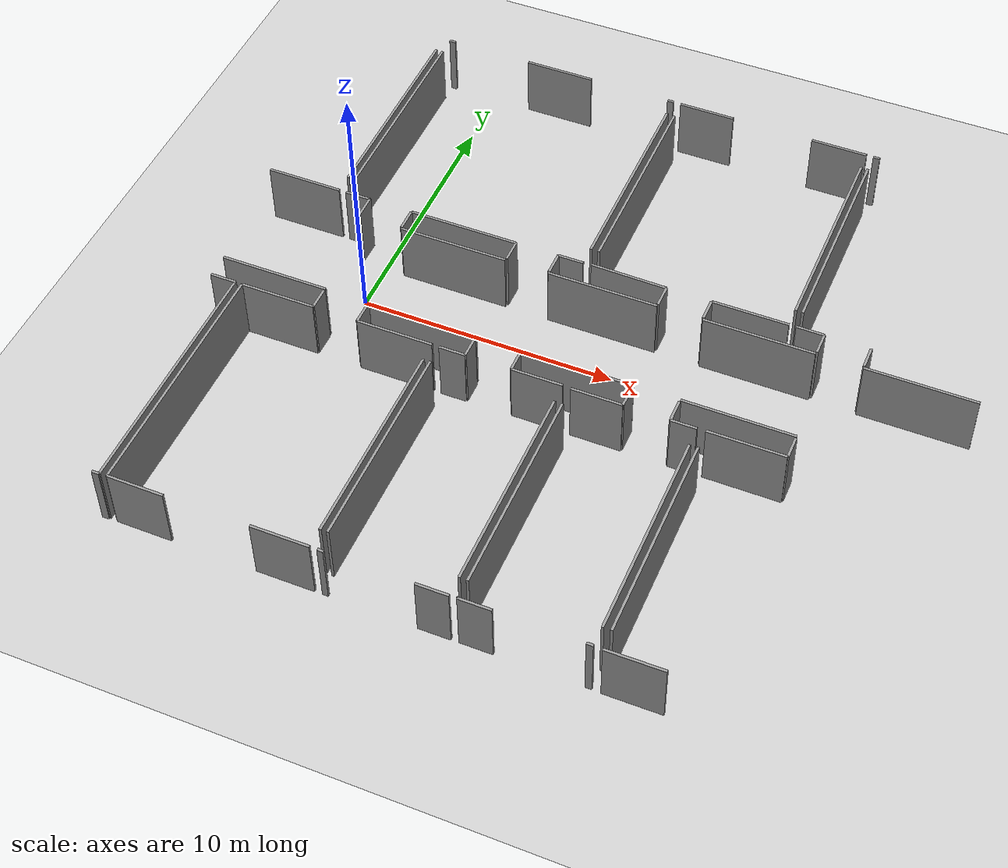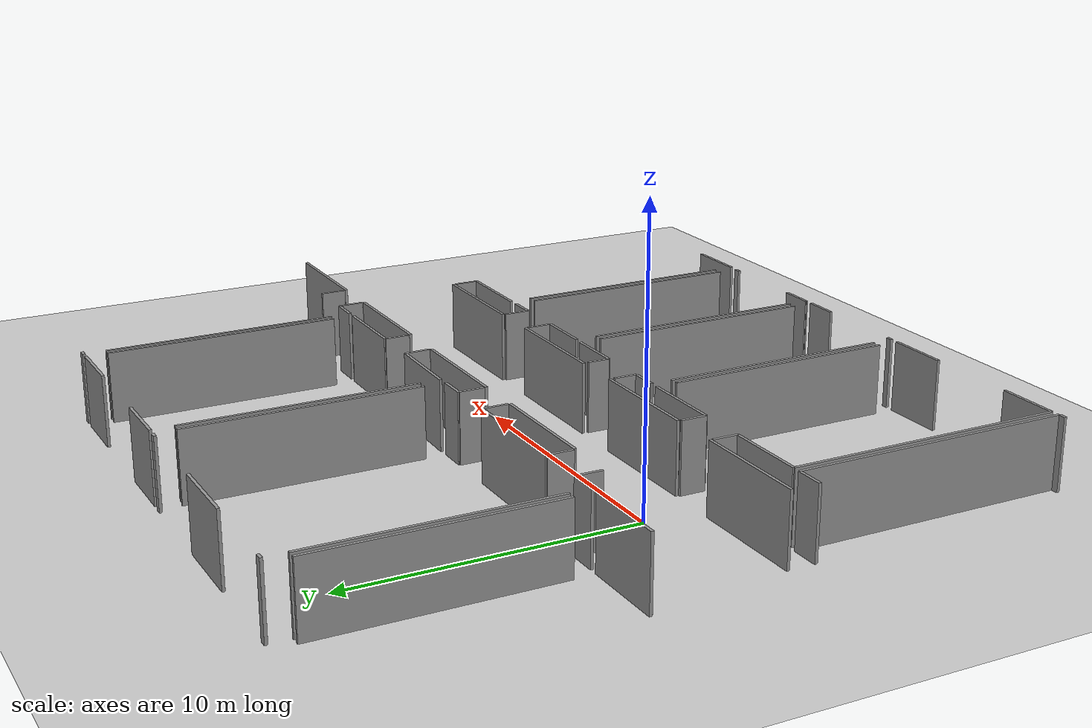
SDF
<sdf version="1.6">
 <world name="default">
  <model name="ground_plane">
   <static>1</static>
   <link name="link">
    <collision name="collision">
     <geometry><plane><normal>0 0 1</normal><size>100 100</size></plane></geometry>
     <surface><friction><ode><mu>100</mu><mu2>50</mu2></ode></friction></surface>
    </collision>
    <visual name="visual">
     <cast_shadows>0</cast_shadows>
     <geometry><plane><normal>0 0 1</normal><size>100 100</size></plane></geometry>
     <material>
      <script><uri>file://media/materials/scripts/gazebo.material</uri><name>Gazebo/Grey</name></script>
     </material>
    </visual>
   </link>
  </model>
  <model name="50052751">
   <static>1</static>
   <link name="Wall_105">
    <collision name="Wall_105_Collision">
     <geometry><box><size>8.13187817027 0.1 2.5</size></box></geometry>
     <pose>4.06593908514 0 1.25 0 0 0</pose>
    </collision>
    <visual name="Wall_105_Visual">
     <pose>4.06593908514 0 1.25 0 0 0</pose>
     <geometry><box><size>8.13187817027 0.1 2.5</size></box></geometry>
     <material>
      <script><uri>file://media/materials/scripts/gazebo.material</uri><name>Gazebo/Grey</name></script>
      <ambient>1 1 1 1</ambient>
     </material>
    </visual>
    <pose>36.7313640758 -0.756551151891 0 0 0 -1.57079632679</pose>
   </link>
   <link name="Wall_106">
    <collision name="Wall_106_Collision">
     <geometry><box><size>2.95972250064 0.1 2.5</size></box></geometry>
     <pose>1.47986125032 0 1.25 0 0 0</pose>
    </collision>
    <visual name="Wall_106_Visual">
     <pose>1.47986125032 0 1.25 0 0 0</pose>
     <geometry><box><size>2.95972250064 0.1 2.5</size></box></geometry>
     <material>
      <script><uri>file://media/materials/scripts/gazebo.material</uri><name>Gazebo/Grey</name></script>
      <ambient>1 1 1 1</ambient>
     </material>
    </visual>
    <pose>36.7313640758 -9.62835994732 0 0 0 3.14159265359</pose>
   </link>
   <link name="Wall_110">
    <collision name="Wall_110_Collision">
     <geometry><box><size>8.15611115199 0.1 2.5</size></box></geometry>
     <pose>4.078055576 0 1.25 0 0 0</pose>
    </collision>
    <visual name="Wall_110_Visual">
     <pose>4.078055576 0 1.25 0 0 0</pose>
     <geometry><box><size>8.15611115199 0.1 2.5</size></box></geometry>
     <material>
      <script><uri>file://media/materials/scripts/gazebo.material</uri><name>Gazebo/Grey</name></script>
      <ambient>1 1 1 1</ambient>
     </material>
    </visual>
    <pose>37.007188695 -8.90834857939 0 0 0 1.57079632679</pose>
   </link>
   <link name="Wall_111">
    <collision name="Wall_111_Collision">
     <geometry><box><size>0.256539733209 0.1 2.5</size></box></geometry>
     <pose>0.128269866604 0 1.25 0 0 0</pose>
    </collision>
    <visual name="Wall_111_Visual">
     <pose>0.128269866604 0 1.25 0 0 0</pose>
     <geometry><box><size>0.256539733209 0.1 2.5</size></box></geometry>
     <material>
      <script><uri>file://media/materials/scripts/gazebo.material</uri><name>Gazebo/Grey</name></script>
      <ambient>1 1 1 1</ambient>
     </material>
    </visual>
    <pose>37.007188695 -0.0142099159839 0 0 0 0.0</pose>
   </link>
   <link name="Wall_112">
    <collision name="Wall_112_Collision">
     <geometry><box><size>2.73705819214 0.1 2.5</size></box></geometry>
     <pose>1.36852909607 0 1.25 0 0 0</pose>
    </collision>
    <visual name="Wall_112_Visual">
     <pose>1.36852909607 0 1.25 0 0 0</pose>
     <geometry><box><size>2.73705819214 0.1 2.5</size></box></geometry>
     <material>
      <script><uri>file://media/materials/scripts/gazebo.material</uri><name>Gazebo/Grey</name></script>
      <ambient>1 1 1 1</ambient>
     </material>
    </visual>
    <pose>40.4930587098 -0.0142099159839 0 0 0 0.0</pose>
   </link>
   <link name="Wall_113">
    <collision name="Wall_113_Collision">
     <geometry><box><size>0.252226008714 0.1 2.5</size></box></geometry>
     <pose>0.126113004357 0 1.25 0 0 0</pose>
    </collision>
    <visual name="Wall_113_Visual">
     <pose>0.126113004357 0 1.25 0 0 0</pose>
     <geometry><box><size>0.252226008714 0.1 2.5</size></box></geometry>
     <material>
      <script><uri>file://media/materials/scripts/gazebo.material</uri><name>Gazebo/Grey</name></script>
      <ambient>1 1 1 1</ambient>
     </material>
    </visual>
    <pose>46.4883745125 -0.0142099159839 0 0 0 0.0</pose>
   </link>
   <link name="Wall_114">
    <collision name="Wall_114_Collision">
     <geometry><box><size>8.12337759553 0.1 2.5</size></box></geometry>
     <pose>4.06168879776 0 1.25 0 0 0</pose>
    </collision>
    <visual name="Wall_114_Visual">
     <pose>4.06168879776 0 1.25 0 0 0</pose>
     <geometry><box><size>8.12337759553 0.1 2.5</size></box></geometry>
     <material>
      <script><uri>file://media/materials/scripts/gazebo.material</uri><name>Gazebo/Grey</name></script>
      <ambient>1 1 1 1</ambient>
     </material>
    </visual>
    <pose>46.7406005212 -0.741833738908 0 0 0 -1.57079632679</pose>
   </link>
   <link name="Wall_115">
    <collision name="Wall_115_Collision">
     <geometry><box><size>0.992791005123 0.1 2.5</size></box></geometry>
     <pose>0.496395502562 0 1.25 0 0 0</pose>
    </collision>
    <visual name="Wall_115_Visual">
     <pose>0.496395502562 0 1.25 0 0 0</pose>
     <geometry><box><size>0.992791005123 0.1 2.5</size></box></geometry>
     <material>
      <script><uri>file://media/materials/scripts/gazebo.material</uri><name>Gazebo/Grey</name></script>
      <ambient>1 1 1 1</ambient>
     </material>
    </visual>
    <pose>46.7406005212 -9.62214310908 0 0 0 3.14159265359</pose>
   </link>
   <link name="Wall_116">
    <collision name="Wall_116_Collision">
     <geometry><box><size>0.895859078233 0.1 2.5</size></box></geometry>
     <pose>0.447929539117 0 1.25 0 0 0</pose>
    </collision>
    <visual name="Wall_116_Visual">
     <pose>0.447929539117 0 1.25 0 0 0</pose>
     <geometry><box><size>0.895859078233 0.1 2.5</size></box></geometry>
     <material>
      <script><uri>file://media/materials/scripts/gazebo.material</uri><name>Gazebo/Grey</name></script>
      <ambient>1 1 1 1</ambient>
     </material>
    </visual>
    <pose>45.7478095161 -9.62214310908 0 0 0 -1.57079632679</pose>
   </link>
   <link name="Wall_117">
    <collision name="Wall_117_Collision">
     <geometry><box><size>0.883425401747 0.1 2.5</size></box></geometry>
     <pose>0.441712700874 0 1.25 0 0 0</pose>
    </collision>
    <visual name="Wall_117_Visual">
     <pose>0.441712700874 0 1.25 0 0 0</pose>
     <geometry><box><size>0.883425401747 0.1 2.5</size></box></geometry>
     <material>
      <script><uri>file://media/materials/scripts/gazebo.material</uri><name>Gazebo/Grey</name></script>
      <ambient>1 1 1 1</ambient>
     </material>
    </visual>
    <pose>44.0499783045 -10.5180021873 0 0 0 1.57079632679</pose>
   </link>
   <link name="Wall_118">
    <collision name="Wall_118_Collision">
     <geometry><box><size>4.28670027988 0.1 2.5</size></box></geometry>
     <pose>2.14335013994 0 1.25 0 0 0</pose>
    </collision>
    <visual name="Wall_118_Visual">
     <pose>2.14335013994 0 1.25 0 0 0</pose>
     <geometry><box><size>4.28670027988 0.1 2.5</size></box></geometry>
     <material>
      <script><uri>file://media/materials/scripts/gazebo.material</uri><name>Gazebo/Grey</name></script>
      <ambient>1 1 1 1</ambient>
     </material>
    </visual>
    <pose>44.0499783045 -9.63457678556 0 0 0 3.14159265359</pose>
   </link>
   <link name="Wall_119">
    <collision name="Wall_119_Collision">
     <geometry><box><size>0.891672227988 0.1 2.5</size></box></geometry>
     <pose>0.445836113994 0 1.25 0 0 0</pose>
    </collision>
    <visual name="Wall_119_Visual">
     <pose>0.445836113994 0 1.25 0 0 0</pose>
     <geometry><box><size>0.891672227988 0.1 2.5</size></box></geometry>
     <material>
      <script><uri>file://media/materials/scripts/gazebo.material</uri><name>Gazebo/Grey</name></script>
      <ambient>1 1 1 1</ambient>
     </material>
    </visual>
    <pose>39.7632780246 -9.63457678556 0 0 0 -1.57079632679</pose>
   </link>
   <link name="Wall_120">
    <collision name="Wall_120_Collision">
     <geometry><box><size>0.897762191981 0.1 2.5</size></box></geometry>
     <pose>0.448881095991 0 1.25 0 0 0</pose>
    </collision>
    <visual name="Wall_120_Visual">
     <pose>0.448881095991 0 1.25 0 0 0</pose>
     <geometry><box><size>0.897762191981 0.1 2.5</size></box></geometry>
     <material>
      <script><uri>file://media/materials/scripts/gazebo.material</uri><name>Gazebo/Grey</name></script>
      <ambient>1 1 1 1</ambient>
     </material>
    </visual>
    <pose>38.0134283706 -10.5262490136 0 0 0 1.57079632679</pose>
   </link>
   <link name="Wall_121">
    <collision name="Wall_121_Collision">
     <geometry><box><size>1.00624172325 0.1 2.5</size></box></geometry>
     <pose>0.503120861627 0 1.25 0 0 0</pose>
    </collision>
    <visual name="Wall_121_Visual">
     <pose>0.503120861627 0 1.25 0 0 0</pose>
     <geometry><box><size>1.00624172325 0.1 2.5</size></box></geometry>
     <material>
      <script><uri>file://media/materials/scripts/gazebo.material</uri><name>Gazebo/Grey</name></script>
      <ambient>1 1 1 1</ambient>
     </material>
    </visual>
    <pose>38.0134283706 -9.62848682157 0 0 0 3.13957525625</pose>
   </link>
   <link name="Wall_122">
    <collision name="Wall_122_Collision">
     <geometry><box><size>8.09406964381 0.1 2.5</size></box></geometry>
     <pose>4.04703482191 0 1.25 0 0 0</pose>
    </collision>
    <visual name="Wall_122_Visual">
     <pose>4.04703482191 0 1.25 0 0 0</pose>
     <geometry><box><size>8.09406964381 0.1 2.5</size></box></geometry>
     <material>
      <script><uri>file://media/materials/scripts/gazebo.material</uri><name>Gazebo/Grey</name></script>
      <ambient>1 1 1 1</ambient>
     </material>
    </visual>
    <pose>47.0515693076 -8.88068999292 0 0 0 1.57079632679</pose>
   </link>
   <link name="Wall_123">
    <collision name="Wall_123_Collision">
     <geometry><box><size>2.1994919955 0.1 2.5</size></box></geometry>
     <pose>1.09974599775 0 1.25 0 0 0</pose>
    </collision>
    <visual name="Wall_123_Visual">
     <pose>1.09974599775 0 1.25 0 0 0</pose>
     <geometry><box><size>2.1994919955 0.1 2.5</size></box></geometry>
     <material>
      <script><uri>file://media/materials/scripts/gazebo.material</uri><name>Gazebo/Grey</name></script>
      <ambient>1 1 1 1</ambient>
     </material>
    </visual>
    <pose>47.0515693076 -0.0282929577179 0 0 0 0.0</pose>
   </link>
   <link name="Wall_124">
    <collision name="Wall_124_Collision">
     <geometry><box><size>2.21890375573 0.1 2.5</size></box></geometry>
     <pose>1.10945187787 0 1.25 0 0 0</pose>
    </collision>
    <visual name="Wall_124_Visual">
     <pose>1.10945187787 0 1.25 0 0 0</pose>
     <geometry><box><size>2.21890375573 0.1 2.5</size></box></geometry>
     <material>
      <script><uri>file://media/materials/scripts/gazebo.material</uri><name>Gazebo/Grey</name></script>
      <ambient>1 1 1 1</ambient>
     </material>
    </visual>
    <pose>52.4861009259 -0.0282929577179 0 0 0 0.0</pose>
   </link>
   <link name="Wall_125">
    <collision name="Wall_125_Collision">
     <geometry><box><size>8.12147448178 0.1 2.5</size></box></geometry>
     <pose>4.06073724089 0 1.25 0 0 0</pose>
    </collision>
    <visual name="Wall_125_Visual">
     <pose>4.06073724089 0 1.25 0 0 0</pose>
     <geometry><box><size>8.12147448178 0.1 2.5</size></box></geometry>
     <material>
      <script><uri>file://media/materials/scripts/gazebo.material</uri><name>Gazebo/Grey</name></script>
      <ambient>1 1 1 1</ambient>
     </material>
    </visual>
    <pose>54.7050046817 -0.763021738634 0 0 0 -1.57079632679</pose>
   </link>
   <link name="Wall_126">
    <collision name="Wall_126_Collision">
     <geometry><box><size>2.95008005765 0.1 2.5</size></box></geometry>
     <pose>1.47504002883 0 1.25 0 0 0</pose>
    </collision>
    <visual name="Wall_126_Visual">
     <pose>1.47504002883 0 1.25 0 0 0</pose>
     <geometry><box><size>2.95008005765 0.1 2.5</size></box></geometry>
     <material>
      <script><uri>file://media/materials/scripts/gazebo.material</uri><name>Gazebo/Grey</name></script>
      <ambient>1 1 1 1</ambient>
     </material>
    </visual>
    <pose>54.7050046817 -9.63521115681 0 0 0 3.14159265359</pose>
   </link>
   <link name="Wall_127">
    <collision name="Wall_127_Collision">
     <geometry><box><size>0.884313521496 0.1 2.5</size></box></geometry>
     <pose>0.442156760748 0 1.25 0 0 0</pose>
    </collision>
    <visual name="Wall_127_Visual">
     <pose>0.442156760748 0 1.25 0 0 0</pose>
     <geometry><box><size>0.884313521496 0.1 2.5</size></box></geometry>
     <material>
      <script><uri>file://media/materials/scripts/gazebo.material</uri><name>Gazebo/Grey</name></script>
      <ambient>1 1 1 1</ambient>
     </material>
    </visual>
    <pose>51.754924624 -9.63521115681 0 0 0 -1.57079632679</pose>
   </link>
   <link name="Wall_128">
    <collision name="Wall_128_Collision">
     <geometry><box><size>0.880380419751 0.1 2.5</size></box></geometry>
     <pose>0.440190209875 0 1.25 0 0 0</pose>
    </collision>
    <visual name="Wall_128_Visual">
     <pose>0.440190209875 0 1.25 0 0 0</pose>
     <geometry><box><size>0.880380419751 0.1 2.5</size></box></geometry>
     <material>
      <script><uri>file://media/materials/scripts/gazebo.material</uri><name>Gazebo/Grey</name></script>
      <ambient>1 1 1 1</ambient>
     </material>
    </visual>
    <pose>50.0133217962 -10.5195246783 0 0 0 1.57079632679</pose>
   </link>
   <link name="Wall_129">
    <collision name="Wall_129_Collision">
     <geometry><box><size>2.9621916136 0.1 2.5</size></box></geometry>
     <pose>1.4810958068 0 1.25 0 0 0</pose>
    </collision>
    <visual name="Wall_129_Visual">
     <pose>1.4810958068 0 1.25 0 0 0</pose>
     <geometry><box><size>2.9621916136 0.1 2.5</size></box></geometry>
     <material>
      <script><uri>file://media/materials/scripts/gazebo.material</uri><name>Gazebo/Grey</name></script>
      <ambient>1 1 1 1</ambient>
     </material>
    </visual>
    <pose>50.0133217962 -9.63914425856 0 0 0 3.12437365646</pose>
   </link>
   <link name="Wall_130">
    <collision name="Wall_130_Collision">
     <geometry><box><size>8.12997505652 0.1 2.5</size></box></geometry>
     <pose>4.06498752826 0 1.25 0 0 0</pose>
    </collision>
    <visual name="Wall_130_Visual">
     <pose>4.06498752826 0 1.25 0 0 0</pose>
     <geometry><box><size>8.12997505652 0.1 2.5</size></box></geometry>
     <material>
      <script><uri>file://media/materials/scripts/gazebo.material</uri><name>Gazebo/Grey</name></script>
      <ambient>1 1 1 1</ambient>
     </material>
    </visual>
    <pose>54.9749930854 -8.90111674715 0 0 0 1.57079632679</pose>
   </link>
   <link name="Wall_131">
    <collision name="Wall_131_Collision">
     <geometry><box><size>0.259965337955 0.1 2.5</size></box></geometry>
     <pose>0.129982668977 0 1.25 0 0 0</pose>
    </collision>
    <visual name="Wall_131_Visual">
     <pose>0.129982668977 0 1.25 0 0 0</pose>
     <geometry><box><size>0.259965337955 0.1 2.5</size></box></geometry>
     <material>
      <script><uri>file://media/materials/scripts/gazebo.material</uri><name>Gazebo/Grey</name></script>
      <ambient>1 1 1 1</ambient>
     </material>
    </visual>
    <pose>54.9749930854 -0.0267704667196 0 0 0 0.0</pose>
   </link>
   <link name="Wall_135">
    <collision name="Wall_135_Collision">
     <geometry><box><size>0.88976911424 0.1 2.5</size></box></geometry>
     <pose>0.44488455712 0 1.25 0 0 0</pose>
    </collision>
    <visual name="Wall_135_Visual">
     <pose>0.44488455712 0 1.25 0 0 0</pose>
     <geometry><box><size>0.88976911424 0.1 2.5</size></box></geometry>
     <material>
      <script><uri>file://media/materials/scripts/gazebo.material</uri><name>Gazebo/Grey</name></script>
      <ambient>1 1 1 1</ambient>
     </material>
    </visual>
    <pose>57.7657190852 -9.62214310908 0 0 0 -1.57079632679</pose>
   </link>
   <link name="Wall_136">
    <collision name="Wall_136_Collision">
     <geometry><box><size>0.876701066505 0.1 2.5</size></box></geometry>
     <pose>0.438350533252 0 1.25 0 0 0</pose>
    </collision>
    <visual name="Wall_136_Visual">
     <pose>0.438350533252 0 1.25 0 0 0</pose>
     <geometry><box><size>0.876701066505 0.1 2.5</size></box></geometry>
     <material>
      <script><uri>file://media/materials/scripts/gazebo.material</uri><name>Gazebo/Grey</name></script>
      <ambient>1 1 1 1</ambient>
     </material>
    </visual>
    <pose>56.0261462454 -10.5119122233 0 0 0 1.57079632679</pose>
   </link>
   <link name="Wall_137">
    <collision name="Wall_137_Collision">
     <geometry><box><size>1.05118651283 0.1 2.5</size></box></geometry>
     <pose>0.525593256415 0 1.25 0 0 0</pose>
    </collision>
    <visual name="Wall_137_Visual">
     <pose>0.525593256415 0 1.25 0 0 0</pose>
     <geometry><box><size>1.05118651283 0.1 2.5</size></box></geometry>
     <material>
      <script><uri>file://media/materials/scripts/gazebo.material</uri><name>Gazebo/Grey</name></script>
      <ambient>1 1 1 1</ambient>
     </material>
    </visual>
    <pose>56.0261462454 -9.63521115681 0 0 0 3.13362661811</pose>
   </link>
   <link name="Wall_170">
    <collision name="Wall_170_Collision">
     <geometry><box><size>4.2249125202 0.1 2.5</size></box></geometry>
     <pose>2.1124562601 0 1.25 0 0 0</pose>
    </collision>
    <visual name="Wall_170_Visual">
     <pose>2.1124562601 0 1.25 0 0 0</pose>
     <geometry><box><size>4.2249125202 0.1 2.5</size></box></geometry>
     <material>
      <script><uri>file://media/materials/scripts/gazebo.material</uri><name>Gazebo/Grey</name></script>
      <ambient>1 1 1 1</ambient>
     </material>
    </visual>
    <pose>39.8018477966 -10.5931117432 0 0 0 0.0</pose>
   </link>
   <link name="Wall_171">
    <collision name="Wall_171_Collision">
     <geometry><box><size>4.25916856767 0.1 2.5</size></box></geometry>
     <pose>2.12958428383 0 1.25 0 0 0</pose>
    </collision>
    <visual name="Wall_171_Visual">
     <pose>2.12958428383 0 1.25 0 0 0</pose>
     <geometry><box><size>4.25916856767 0.1 2.5</size></box></geometry>
     <material>
      <script><uri>file://media/materials/scripts/gazebo.material</uri><name>Gazebo/Grey</name></script>
      <ambient>1 1 1 1</ambient>
     </material>
    </visual>
    <pose>45.7522501148 -10.5931117432 0 0 0 0.0</pose>
   </link>
   <link name="Wall_172">
    <collision name="Wall_172_Collision">
     <geometry><box><size>4.23645807694 0.1 2.5</size></box></geometry>
     <pose>2.11822903847 0 1.25 0 0 0</pose>
    </collision>
    <visual name="Wall_172_Visual">
     <pose>2.11822903847 0 1.25 0 0 0</pose>
     <geometry><box><size>4.23645807694 0.1 2.5</size></box></geometry>
     <material>
      <script><uri>file://media/materials/scripts/gazebo.material</uri><name>Gazebo/Grey</name></script>
      <ambient>1 1 1 1</ambient>
     </material>
    </visual>
    <pose>51.7690076657 -10.5931117432 0 0 0 0.0</pose>
   </link>
   <link name="Wall_173">
    <collision name="Wall_173_Collision">
     <geometry><box><size>4.20207515523 0.1 2.5</size></box></geometry>
     <pose>2.10103757762 0 1.25 0 0 0</pose>
    </collision>
    <visual name="Wall_173_Visual">
     <pose>2.10103757762 0 1.25 0 0 0</pose>
     <geometry><box><size>4.20207515523 0.1 2.5</size></box></geometry>
     <material>
      <script><uri>file://media/materials/scripts/gazebo.material</uri><name>Gazebo/Grey</name></script>
      <ambient>1 1 1 1</ambient>
     </material>
    </visual>
    <pose>57.7742196599 -10.5931117432 0 0 0 0.0</pose>
   </link>
   <link name="Wall_181">
    <collision name="Wall_181_Collision">
     <geometry><box><size>4.2294799932 0.1 2.5</size></box></geometry>
     <pose>2.1147399966 0 1.25 0 0 0</pose>
    </collision>
    <visual name="Wall_181_Visual">
     <pose>2.1147399966 0 1.25 0 0 0</pose>
     <geometry><box><size>4.2294799932 0.1 2.5</size></box></geometry>
     <material>
      <script><uri>file://media/materials/scripts/gazebo.material</uri><name>Gazebo/Grey</name></script>
      <ambient>1 1 1 1</ambient>
     </material>
    </visual>
    <pose>56.568279915 -14.4655675973 0 0 0 3.14159265359</pose>
   </link>
   <link name="Wall_182">
    <collision name="Wall_182_Collision">
     <geometry><box><size>4.25853419642 0.1 2.5</size></box></geometry>
     <pose>2.12926709821 0 1.25 0 0 0</pose>
    </collision>
    <visual name="Wall_182_Visual">
     <pose>2.12926709821 0 1.25 0 0 0</pose>
     <geometry><box><size>4.25853419642 0.1 2.5</size></box></geometry>
     <material>
      <script><uri>file://media/materials/scripts/gazebo.material</uri><name>Gazebo/Grey</name></script>
      <ambient>1 1 1 1</ambient>
     </material>
    </visual>
    <pose>50.5762628428 -14.4655675973 0 0 0 3.14159265359</pose>
   </link>
   <link name="Wall_183">
    <collision name="Wall_183_Collision">
     <geometry><box><size>4.2254200172 0.1 2.5</size></box></geometry>
     <pose>2.1127100086 0 1.25 0 0 0</pose>
    </collision>
    <visual name="Wall_183_Visual">
     <pose>2.1127100086 0 1.25 0 0 0</pose>
     <geometry><box><size>4.2254200172 0.1 2.5</size></box></geometry>
     <material>
      <script><uri>file://media/materials/scripts/gazebo.material</uri><name>Gazebo/Grey</name></script>
      <ambient>1 1 1 1</ambient>
     </material>
    </visual>
    <pose>44.5744764534 -14.4655675973 0 0 0 3.14159265359</pose>
   </link>
   <link name="Wall_184">
    <collision name="Wall_184_Collision">
     <geometry><box><size>4.20194828098 0.1 2.5</size></box></geometry>
     <pose>2.10097414049 0 1.25 0 0 0</pose>
    </collision>
    <visual name="Wall_184_Visual">
     <pose>2.10097414049 0 1.25 0 0 0</pose>
     <geometry><box><size>4.20194828098 0.1 2.5</size></box></geometry>
     <material>
      <script><uri>file://media/materials/scripts/gazebo.material</uri><name>Gazebo/Grey</name></script>
      <ambient>1 1 1 1</ambient>
     </material>
    </visual>
    <pose>38.5709138245 -14.4655675973 0 0 0 3.14159265359</pose>
   </link>
   <link name="Wall_221">
    <collision name="Wall_221_Collision">
     <geometry><box><size>8.08899467382 0.1 2.5</size></box></geometry>
     <pose>4.04449733691 0 1.25 0 0 0</pose>
    </collision>
    <visual name="Wall_221_Visual">
     <pose>4.04449733691 0 1.25 0 0 0</pose>
     <geometry><box><size>8.08899467382 0.1 2.5</size></box></geometry>
     <material>
      <script><uri>file://media/materials/scripts/gazebo.material</uri><name>Gazebo/Grey</name></script>
      <ambient>1 1 1 1</ambient>
     </material>
    </visual>
    <pose>53.6102067797 -24.2978144642 0 0 0 1.57079632679</pose>
   </link>
   <link name="Wall_222">
    <collision name="Wall_222_Collision">
     <geometry><box><size>2.94982630915 0.1 2.5</size></box></geometry>
     <pose>1.47491315458 0 1.25 0 0 0</pose>
    </collision>
    <visual name="Wall_222_Visual">
     <pose>1.47491315458 0 1.25 0 0 0</pose>
     <geometry><box><size>2.94982630915 0.1 2.5</size></box></geometry>
     <material>
      <script><uri>file://media/materials/scripts/gazebo.material</uri><name>Gazebo/Grey</name></script>
      <ambient>1 1 1 1</ambient>
     </material>
    </visual>
    <pose>53.6102067797 -15.4331106267 0 0 0 0.0</pose>
   </link>
   <link name="Wall_223">
    <collision name="Wall_223_Collision">
     <geometry><box><size>0.884313521496 0.1 2.5</size></box></geometry>
     <pose>0.442156760748 0 1.25 0 0 0</pose>
    </collision>
    <visual name="Wall_223_Visual">
     <pose>0.442156760748 0 1.25 0 0 0</pose>
     <geometry><box><size>0.884313521496 0.1 2.5</size></box></geometry>
     <material>
      <script><uri>file://media/materials/scripts/gazebo.material</uri><name>Gazebo/Grey</name></script>
      <ambient>1 1 1 1</ambient>
     </material>
    </visual>
    <pose>56.5600330888 -15.4331106267 0 0 0 1.57079632679</pose>
   </link>
   <link name="Wall_228">
    <collision name="Wall_228_Collision">
     <geometry><box><size>2.17542288592 0.1 2.5</size></box></geometry>
     <pose>1.08771144296 0 1.25 0 0 0</pose>
    </collision>
    <visual name="Wall_228_Visual">
     <pose>1.08771144296 0 1.25 0 0 0</pose>
     <geometry><box><size>2.17542288592 0.1 2.5</size></box></geometry>
     <material>
      <script><uri>file://media/materials/scripts/gazebo.material</uri><name>Gazebo/Grey</name></script>
      <ambient>1 1 1 1</ambient>
     </material>
    </visual>
    <pose>55.7855926677 -25.0463725383 0 0 0 -3.13576045563</pose>
   </link>
   <link name="Wall_229">
    <collision name="Wall_229_Collision">
     <geometry><box><size>1.2362626906 0.1 2.5</size></box></geometry>
     <pose>0.618131345298 0 1.25 0 0 0</pose>
    </collision>
    <visual name="Wall_229_Visual">
     <pose>0.618131345298 0 1.25 0 0 0</pose>
     <geometry><box><size>1.2362626906 0.1 2.5</size></box></geometry>
     <material>
      <script><uri>file://media/materials/scripts/gazebo.material</uri><name>Gazebo/Grey</name></script>
      <ambient>1 1 1 1</ambient>
     </material>
    </visual>
    <pose>48.5738065574 -25.0438350533 0 0 0 0.0</pose>
   </link>
   <link name="Wall_230">
    <collision name="Wall_230_Collision">
     <geometry><box><size>0.252226008714 0.1 2.5</size></box></geometry>
     <pose>0.126113004357 0 1.25 0 0 0</pose>
    </collision>
    <visual name="Wall_230_Visual">
     <pose>0.126113004357 0 1.25 0 0 0</pose>
     <geometry><box><size>0.252226008714 0.1 2.5</size></box></geometry>
     <material>
      <script><uri>file://media/materials/scripts/gazebo.material</uri><name>Gazebo/Grey</name></script>
      <ambient>1 1 1 1</ambient>
     </material>
    </visual>
    <pose>53.0461238648 -25.0438350533 0 0 0 0.0</pose>
   </link>
   <link name="Wall_231">
    <collision name="Wall_231_Collision">
     <geometry><box><size>8.08239721283 0.1 2.5</size></box></geometry>
     <pose>4.04119860641 0 1.25 0 0 0</pose>
    </collision>
    <visual name="Wall_231_Visual">
     <pose>4.04119860641 0 1.25 0 0 0</pose>
     <geometry><box><size>8.08239721283 0.1 2.5</size></box></geometry>
     <material>
      <script><uri>file://media/materials/scripts/gazebo.material</uri><name>Gazebo/Grey</name></script>
      <ambient>1 1 1 1</ambient>
     </material>
    </visual>
    <pose>53.2983498735 -24.2995907037 0 0 0 1.57079632679</pose>
   </link>
   <link name="Wall_232">
    <collision name="Wall_232_Collision">
     <geometry><box><size>0.97769296939 0.1 2.5</size></box></geometry>
     <pose>0.488846484695 0 1.25 0 0 0</pose>
    </collision>
    <visual name="Wall_232_Visual">
     <pose>0.488846484695 0 1.25 0 0 0</pose>
     <geometry><box><size>0.97769296939 0.1 2.5</size></box></geometry>
     <material>
      <script><uri>file://media/materials/scripts/gazebo.material</uri><name>Gazebo/Grey</name></script>
      <ambient>1 1 1 1</ambient>
     </material>
    </visual>
    <pose>53.2983498735 -15.4497311535 0 0 0 3.14159265359</pose>
   </link>
   <link name="Wall_233">
    <collision name="Wall_233_Collision">
     <geometry><box><size>0.908546503219 0.1 2.5</size></box></geometry>
     <pose>0.454273251609 0 1.25 0 0 0</pose>
    </collision>
    <visual name="Wall_233_Visual">
     <pose>0.454273251609 0 1.25 0 0 0</pose>
     <geometry><box><size>0.908546503219 0.1 2.5</size></box></geometry>
     <material>
      <script><uri>file://media/materials/scripts/gazebo.material</uri><name>Gazebo/Grey</name></script>
      <ambient>1 1 1 1</ambient>
     </material>
    </visual>
    <pose>52.3206569041 -15.4497311535 0 0 0 1.57079632679</pose>
   </link>
   <link name="Wall_234">
    <collision name="Wall_234_Collision">
     <geometry><box><size>0.904867149973 0.1 2.5</size></box></geometry>
     <pose>0.452433574986 0 1.25 0 0 0</pose>
    </collision>
    <visual name="Wall_234_Visual">
     <pose>0.452433574986 0 1.25 0 0 0</pose>
     <geometry><box><size>0.904867149973 0.1 2.5</size></box></geometry>
     <material>
      <script><uri>file://media/materials/scripts/gazebo.material</uri><name>Gazebo/Grey</name></script>
      <ambient>1 1 1 1</ambient>
     </material>
    </visual>
    <pose>50.5648441604 -14.5411846502 0 0 0 -1.57079632679</pose>
   </link>
   <link name="Wall_235">
    <collision name="Wall_235_Collision">
     <geometry><box><size>1.95855779503 0.1 2.5</size></box></geometry>
     <pose>0.979278897514 0 1.25 0 0 0</pose>
    </collision>
    <visual name="Wall_235_Visual">
     <pose>0.979278897514 0 1.25 0 0 0</pose>
     <geometry><box><size>1.95855779503 0.1 2.5</size></box></geometry>
     <material>
      <script><uri>file://media/materials/scripts/gazebo.material</uri><name>Gazebo/Grey</name></script>
      <ambient>1 1 1 1</ambient>
     </material>
    </visual>
    <pose>50.5648441604 -15.4460518002 0 0 0 3.14159265359</pose>
   </link>
   <link name="Wall_236">
    <collision name="Wall_236_Collision">
     <geometry><box><size>8.1039658353 0.1 2.5</size></box></geometry>
     <pose>4.05198291765 0 1.25 0 0 0</pose>
    </collision>
    <visual name="Wall_236_Visual">
     <pose>4.05198291765 0 1.25 0 0 0</pose>
     <geometry><box><size>8.1039658353 0.1 2.5</size></box></geometry>
     <material>
      <script><uri>file://media/materials/scripts/gazebo.material</uri><name>Gazebo/Grey</name></script>
      <ambient>1 1 1 1</ambient>
     </material>
    </visual>
    <pose>48.6062863653 -16.2005729641 0 0 0 -1.57079632679</pose>
   </link>
   <link name="Wall_237">
    <collision name="Wall_237_Collision">
     <geometry><box><size>0.0437480737765 0.1 2.5</size></box></geometry>
     <pose>0.0218740368882 0 1.25 0 0 0</pose>
    </collision>
    <visual name="Wall_237_Visual">
     <pose>0.0218740368882 0 1.25 0 0 0</pose>
     <geometry><box><size>0.0437480737765 0.1 2.5</size></box></geometry>
     <material>
      <script><uri>file://media/materials/scripts/gazebo.material</uri><name>Gazebo/Grey</name></script>
      <ambient>1 1 1 1</ambient>
     </material>
    </visual>
    <pose>48.6062863653 -25.0145271016 0 0 0 -2.40748417033</pose>
   </link>
   <link name="Wall_238">
    <collision name="Wall_238_Collision">
     <geometry><box><size>8.10739144005 0.1 2.5</size></box></geometry>
     <pose>4.05369572002 0 1.25 0 0 0</pose>
    </collision>
    <visual name="Wall_238_Visual">
     <pose>4.05369572002 0 1.25 0 0 0</pose>
     <geometry><box><size>8.10739144005 0.1 2.5</size></box></geometry>
     <material>
      <script><uri>file://media/materials/scripts/gazebo.material</uri><name>Gazebo/Grey</name></script>
      <ambient>1 1 1 1</ambient>
     </material>
    </visual>
    <pose>43.5594824546 -24.2950232307 0 0 0 1.57079632679</pose>
   </link>
   <link name="Wall_239">
    <collision name="Wall_239_Collision">
     <geometry><box><size>1.00877716061 0.1 2.5</size></box></geometry>
     <pose>0.504388580303 0 1.25 0 0 0</pose>
    </collision>
    <visual name="Wall_239_Visual">
     <pose>0.504388580303 0 1.25 0 0 0</pose>
     <geometry><box><size>1.00877716061 0.1 2.5</size></box></geometry>
     <material>
      <script><uri>file://media/materials/scripts/gazebo.material</uri><name>Gazebo/Grey</name></script>
      <ambient>1 1 1 1</ambient>
     </material>
    </visual>
    <pose>43.5594824546 -15.4432605667 0 0 0 0.0</pose>
   </link>
   <link name="Wall_240">
    <collision name="Wall_240_Collision">
     <geometry><box><size>0.807427726084 0.1 2.5</size></box></geometry>
     <pose>0.403713863042 0 1.25 0 0 0</pose>
    </collision>
    <visual name="Wall_240_Visual">
     <pose>0.403713863042 0 1.25 0 0 0</pose>
     <geometry><box><size>0.807427726084 0.1 2.5</size></box></geometry>
     <material>
      <script><uri>file://media/materials/scripts/gazebo.material</uri><name>Gazebo/Grey</name></script>
      <ambient>1 1 1 1</ambient>
     </material>
    </visual>
    <pose>44.5682596152 -15.4432605667 0 0 0 1.57079632679</pose>
   </link>
   <link name="Wall_241">
    <collision name="Wall_241_Collision">
     <geometry><box><size>0.781291630613 0.1 2.5</size></box></geometry>
     <pose>0.390645815307 0 1.25 0 0 0</pose>
    </collision>
    <visual name="Wall_241_Visual">
     <pose>0.390645815307 0 1.25 0 0 0</pose>
     <geometry><box><size>0.781291630613 0.1 2.5</size></box></geometry>
     <material>
      <script><uri>file://media/materials/scripts/gazebo.material</uri><name>Gazebo/Grey</name></script>
      <ambient>1 1 1 1</ambient>
     </material>
    </visual>
    <pose>46.3357447899 -14.6358328406 0 0 0 -1.57079632679</pose>
   </link>
   <link name="Wall_242">
    <collision name="Wall_242_Collision">
     <geometry><box><size>1.96578962727 0.1 2.5</size></box></geometry>
     <pose>0.982894813634 0 1.25 0 0 0</pose>
    </collision>
    <visual name="Wall_242_Visual">
     <pose>0.982894813634 0 1.25 0 0 0</pose>
     <geometry><box><size>1.96578962727 0.1 2.5</size></box></geometry>
     <material>
      <script><uri>file://media/materials/scripts/gazebo.material</uri><name>Gazebo/Grey</name></script>
      <ambient>1 1 1 1</ambient>
     </material>
    </visual>
    <pose>46.3357447899 -15.4171244713 0 0 0 0.0</pose>
   </link>
   <link name="Wall_243">
    <collision name="Wall_243_Collision">
     <geometry><box><size>8.09546526056 0.1 2.5</size></box></geometry>
     <pose>4.04773263028 0 1.25 0 0 0</pose>
    </collision>
    <visual name="Wall_243_Visual">
     <pose>4.04773263028 0 1.25 0 0 0</pose>
     <geometry><box><size>8.09546526056 0.1 2.5</size></box></geometry>
     <material>
      <script><uri>file://media/materials/scripts/gazebo.material</uri><name>Gazebo/Grey</name></script>
      <ambient>1 1 1 1</ambient>
     </material>
    </visual>
    <pose>48.3015344172 -16.1933411319 0 0 0 -1.57079632679</pose>
   </link>
   <link name="Wall_244">
    <collision name="Wall_244_Collision">
     <geometry><box><size>1.22585900211 0.1 2.5</size></box></geometry>
     <pose>0.612929501054 0 1.25 0 0 0</pose>
    </collision>
    <visual name="Wall_244_Visual">
     <pose>0.612929501054 0 1.25 0 0 0</pose>
     <geometry><box><size>1.22585900211 0.1 2.5</size></box></geometry>
     <material>
      <script><uri>file://media/materials/scripts/gazebo.material</uri><name>Gazebo/Grey</name></script>
      <ambient>1 1 1 1</ambient>
     </material>
    </visual>
    <pose>48.3015344172 -25.0577912208 0 0 0 3.14159265359</pose>
   </link>
   <link name="Wall_245">
    <collision name="Wall_245_Collision">
     <geometry><box><size>0.230485295074 0.1 2.5</size></box></geometry>
     <pose>0.115242647537 0 1.25 0 0 0</pose>
    </collision>
    <visual name="Wall_245_Visual">
     <pose>0.115242647537 0 1.25 0 0 0</pose>
     <geometry><box><size>0.230485295074 0.1 2.5</size></box></geometry>
     <material>
      <script><uri>file://media/materials/scripts/gazebo.material</uri><name>Gazebo/Grey</name></script>
      <ambient>1 1 1 1</ambient>
     </material>
    </visual>
    <pose>43.7895054695 -25.0577912208 0 0 0 3.07824674157</pose>
   </link>
   <link name="Wall_246">
    <collision name="Wall_246_Collision">
     <geometry><box><size>9.61947874983 0.1 2.5</size></box></geometry>
     <pose>4.80973937492 0 1.25 0 0 0</pose>
    </collision>
    <visual name="Wall_246_Visual">
     <pose>4.80973937492 0 1.25 0 0 0</pose>
     <geometry><box><size>9.61947874983 0.1 2.5</size></box></geometry>
     <material>
      <script><uri>file://media/materials/scripts/gazebo.material</uri><name>Gazebo/Grey</name></script>
      <ambient>1 1 1 1</ambient>
     </material>
    </visual>
    <pose>35.6426561378 -25.0438350533 0 0 0 1.57079632679</pose>
   </link>
   <link name="Wall_247">
    <collision name="Wall_247_Collision">
     <geometry><box><size>2.90224846546 0.1 2.5</size></box></geometry>
     <pose>1.45112423273 0 1.25 0 0 0</pose>
    </collision>
    <visual name="Wall_247_Visual">
     <pose>1.45112423273 0 1.25 0 0 0</pose>
     <geometry><box><size>2.90224846546 0.1 2.5</size></box></geometry>
     <material>
      <script><uri>file://media/materials/scripts/gazebo.material</uri><name>Gazebo/Grey</name></script>
      <ambient>1 1 1 1</ambient>
     </material>
    </visual>
    <pose>35.6426561378 -15.4243563035 0 0 0 0.0</pose>
   </link>
   <link name="Wall_248">
    <collision name="Wall_248_Collision">
     <geometry><box><size>0.877716060504 0.1 2.5</size></box></geometry>
     <pose>0.438858030252 0 1.25 0 0 0</pose>
    </collision>
    <visual name="Wall_248_Visual">
     <pose>0.438858030252 0 1.25 0 0 0</pose>
     <geometry><box><size>0.877716060504 0.1 2.5</size></box></geometry>
     <material>
      <script><uri>file://media/materials/scripts/gazebo.material</uri><name>Gazebo/Grey</name></script>
      <ambient>1 1 1 1</ambient>
     </material>
    </visual>
    <pose>38.5449046033 -15.4243563035 0 0 0 1.57079632679</pose>
   </link>
   <link name="Wall_249">
    <collision name="Wall_249_Collision">
     <geometry><box><size>0.892433473487 0.1 2.5</size></box></geometry>
     <pose>0.446216736744 0 1.25 0 0 0</pose>
    </collision>
    <visual name="Wall_249_Visual">
     <pose>0.446216736744 0 1.25 0 0 0</pose>
     <geometry><box><size>0.892433473487 0.1 2.5</size></box></geometry>
     <material>
      <script><uri>file://media/materials/scripts/gazebo.material</uri><name>Gazebo/Grey</name></script>
      <ambient>1 1 1 1</ambient>
     </material>
    </visual>
    <pose>40.3213978497 -14.546640243 0 0 0 -1.57079632679</pose>
   </link>
   <link name="Wall_250">
    <collision name="Wall_250_Collision">
     <geometry><box><size>2.96200623714 0.1 2.5</size></box></geometry>
     <pose>1.48100311857 0 1.25 0 0 0</pose>
    </collision>
    <visual name="Wall_250_Visual">
     <pose>1.48100311857 0 1.25 0 0 0</pose>
     <geometry><box><size>2.96200623714 0.1 2.5</size></box></geometry>
     <material>
      <script><uri>file://media/materials/scripts/gazebo.material</uri><name>Gazebo/Grey</name></script>
      <ambient>1 1 1 1</ambient>
     </material>
    </visual>
    <pose>40.3213978497 -15.4390737165 0 0 0 0.0</pose>
   </link>
   <link name="Wall_251">
    <collision name="Wall_251_Collision">
     <geometry><box><size>8.11246641004 0.1 2.5</size></box></geometry>
     <pose>4.05623320502 0 1.25 0 0 0</pose>
    </collision>
    <visual name="Wall_251_Visual">
     <pose>4.05623320502 0 1.25 0 0 0</pose>
     <geometry><box><size>8.11246641004 0.1 2.5</size></box></geometry>
     <material>
      <script><uri>file://media/materials/scripts/gazebo.material</uri><name>Gazebo/Grey</name></script>
      <ambient>1 1 1 1</ambient>
     </material>
    </visual>
    <pose>43.2834040869 -16.1878855391 0 0 0 -1.57079632679</pose>
   </link>
   <link name="Wall_252">
    <collision name="Wall_252_Collision">
     <geometry><box><size>2.21991874973 0.1 2.5</size></box></geometry>
     <pose>1.10995937487 0 1.25 0 0 0</pose>
    </collision>
    <visual name="Wall_252_Visual">
     <pose>1.10995937487 0 1.25 0 0 0</pose>
     <geometry><box><size>2.21991874973 0.1 2.5</size></box></geometry>
     <material>
      <script><uri>file://media/materials/scripts/gazebo.material</uri><name>Gazebo/Grey</name></script>
      <ambient>1 1 1 1</ambient>
     </material>
    </visual>
    <pose>43.2834040869 -25.0518281311 0 0 0 3.14159265359</pose>
   </link>
   <link name="Wall_253">
    <collision name="Wall_253_Collision">
     <geometry><box><size>2.16271323373 0.1 2.5</size></box></geometry>
     <pose>1.08135661686 0 1.25 0 0 0</pose>
    </collision>
    <visual name="Wall_253_Visual">
     <pose>1.08135661686 0 1.25 0 0 0</pose>
     <geometry><box><size>2.16271323373 0.1 2.5</size></box></geometry>
     <material>
      <script><uri>file://media/materials/scripts/gazebo.material</uri><name>Gazebo/Grey</name></script>
      <ambient>1 1 1 1</ambient>
     </material>
    </visual>
    <pose>37.8053546008 -25.0518281311 0 0 0 3.13789678869</pose>
   </link>
   <link name="Wall_256">
    <collision name="Wall_256_Collision">
     <geometry><box><size>0.278235229934 0.1 2.5</size></box></geometry>
     <pose>0.139117614967 0 1.25 0 0 0</pose>
    </collision>
    <visual name="Wall_256_Visual">
     <pose>0.139117614967 0 1.25 0 0 0</pose>
     <geometry><box><size>0.278235229934 0.1 2.5</size></box></geometry>
     <material>
      <script><uri>file://media/materials/scripts/gazebo.material</uri><name>Gazebo/Grey</name></script>
      <ambient>1 1 1 1</ambient>
     </material>
    </visual>
    <pose>35.0788269714 -25.0720011368 0 0 0 0.0</pose>
   </link>
   <link name="Wall_257">
    <collision name="Wall_257_Collision">
     <geometry><box><size>9.65538416254 0.1 2.5</size></box></geometry>
     <pose>4.82769208127 0 1.25 0 0 0</pose>
    </collision>
    <visual name="Wall_257_Visual">
     <pose>4.82769208127 0 1.25 0 0 0</pose>
     <geometry><box><size>9.65538416254 0.1 2.5</size></box></geometry>
     <material>
      <script><uri>file://media/materials/scripts/gazebo.material</uri><name>Gazebo/Grey</name></script>
      <ambient>1 1 1 1</ambient>
     </material>
    </visual>
    <pose>35.3570622014 -25.0720011368 0 0 0 1.57079632679</pose>
   </link>
   <link name="Wall_258">
    <collision name="Wall_258_Collision">
     <geometry><box><size>0.998627220617 0.1 2.5</size></box></geometry>
     <pose>0.499313610308 0 1.25 0 0 0</pose>
    </collision>
    <visual name="Wall_258_Visual">
     <pose>0.499313610308 0 1.25 0 0 0</pose>
     <geometry><box><size>0.998627220617 0.1 2.5</size></box></geometry>
     <material>
      <script><uri>file://media/materials/scripts/gazebo.material</uri><name>Gazebo/Grey</name></script>
      <ambient>1 1 1 1</ambient>
     </material>
    </visual>
    <pose>35.3570622014 -15.4166169743 0 0 0 3.14159265359</pose>
   </link>
   <pose>-39.05 12.5220011368 0 0 0 0</pose>
  </model>
 </world>
</sdf>
